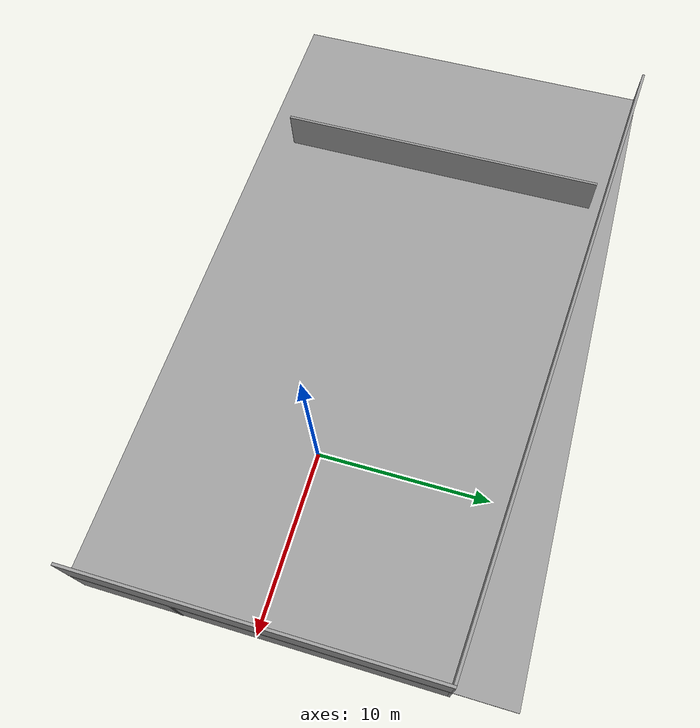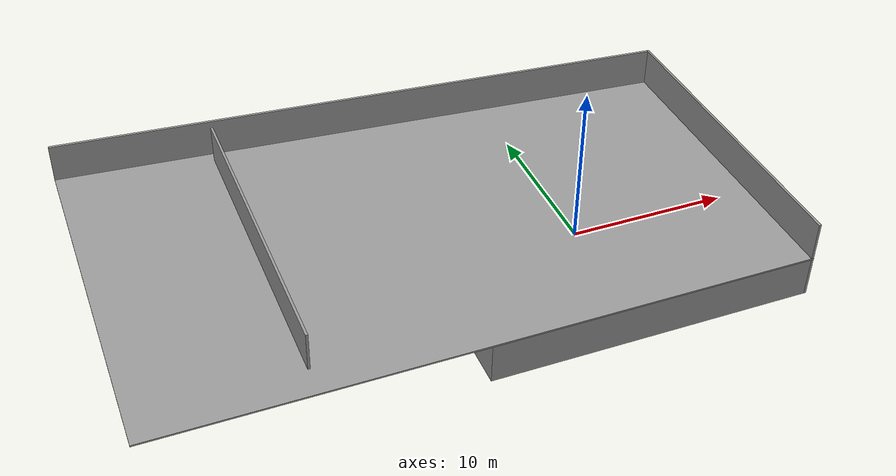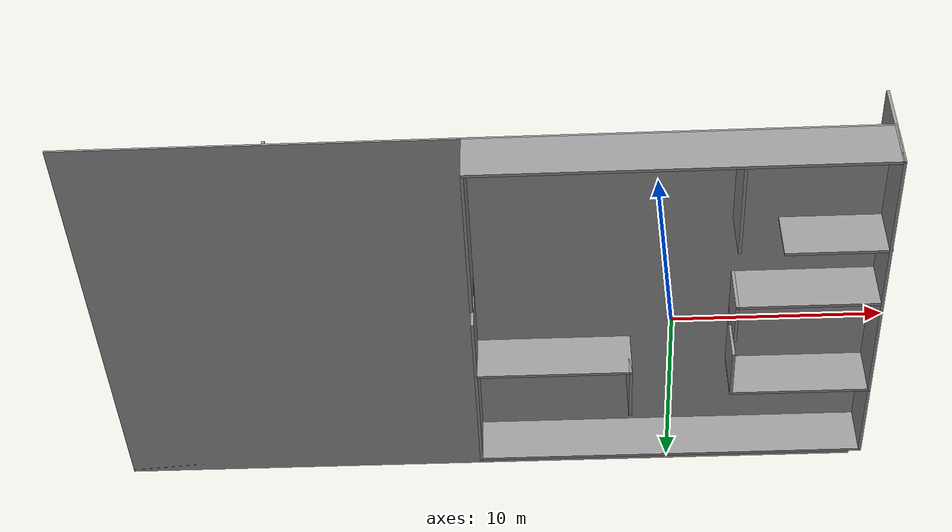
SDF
<?xml version='1.0'?>
<sdf version='1.7'>
  <model name='room_test'>
    <pose>0.223833 0.312062 0 0 -0 0</pose>
    <link name='Floor_0'>
      <collision name='Floor_0_Collision'>
        <geometry>
          <box>
            <size>38.858 22.939 0.1</size>
          </box>
        </geometry>
        <pose>0 0 0.05 0 -0 0</pose>
      </collision>
      <visual name='Floor_0_Visual'>
        <pose>0 0 0.05 0 -0 0</pose>
        <geometry>
          <box>
            <size>38.858 22.939 0.1</size>
          </box>
        </geometry>
        <material>
          <script>
            <uri>file://media/materials/scripts/gazebo.material</uri>
            <name>Gazebo/Grey</name>
          </script>
          <ambient>1 1 1 1</ambient>
        </material>
        <meta>
          <layer>1</layer>
        </meta>
      </visual>
      <pose>-9.55808 1.59449 2.5 0 -0 0</pose>
    </link>
    <link name='Wall_12'>
      <collision name='Wall_12_Collision'>
        <geometry>
          <box>
            <size>19.75 0.15 2.5</size>
          </box>
        </geometry>
        <pose>0 0 1.25 0 -0 0</pose>
      </collision>
      <visual name='Wall_12_Visual'>
        <pose>0 0 1.25 0 -0 0</pose>
        <geometry>
          <box>
            <size>19.75 0.15 2.5</size>
          </box>
        </geometry>
        <material>
          <script>
            <uri>file://media/materials/scripts/gazebo.material</uri>
            <name>Gazebo/Grey</name>
          </script>
          <ambient>1 1 1 1</ambient>
        </material>
        <meta>
          <layer>1</layer>
        </meta>
      </visual>
      <pose>9.79004 -0 2.5 0 -0 1.5708</pose>
    </link>
    <link name='Wall_13'>
      <collision name='Wall_13_Collision'>
        <geometry>
          <box>
            <size>38.9769 0.15 2.5</size>
          </box>
        </geometry>
        <pose>0 0 1.25 0 -0 0</pose>
      </collision>
      <visual name='Wall_13_Visual'>
        <pose>0 0 1.25 0 -0 0</pose>
        <geometry>
          <box>
            <size>38.9769 0.15 2.5</size>
          </box>
        </geometry>
        <material>
          <script>
            <uri>file://media/materials/scripts/gazebo.material</uri>
            <name>Gazebo/Grey</name>
          </script>
          <ambient>1 1 1 1</ambient>
        </material>
        <meta>
          <layer>1</layer>
        </meta>
      </visual>
      <pose>-9.55808 11.3915 2.5 0 -0 3.05952</pose>
    </link>
    <link name='Wall_14'>
      <collision name='Wall_14_Collision'>
        <geometry>
          <box>
            <size>19.5 0.15 2.5</size>
          </box>
        </geometry>
        <pose>0 0 1.25 0 -0 0</pose>
      </collision>
      <visual name='Wall_14_Visual'>
        <pose>0 0 1.25 0 -0 0</pose>
        <geometry>
          <box>
            <size>19.5 0.15 2.5</size>
          </box>
        </geometry>
        <material>
          <script>
            <uri>file://media/materials/scripts/gazebo.material</uri>
            <name>Gazebo/Grey</name>
          </script>
          <ambient>1 1 1 1</ambient>
        </material>
        <meta>
          <layer>1</layer>
        </meta>
      </visual>
      <pose>-19.3581 1.71655 2.5 0 -0 -1.5708</pose>
    </link>
    <link name='Wall_15'>
      <pose>-9.80996 -0 0 0 -0 -1.5708</pose>
      <visual name='Wall_15_Visual_0'>
        <pose>-4.81245 0 1.25 0 -0 0</pose>
        <geometry>
          <box>
            <size>10.1251 0.15 2.5</size>
          </box>
        </geometry>
        <material>
          <script>
            <uri>file://media/materials/scripts/gazebo.material</uri>
            <name>Gazebo/Grey</name>
          </script>
          <ambient>1 1 1 1</ambient>
        </material>
        <meta>
          <layer>0</layer>
        </meta>
      </visual>
      <collision name='Wall_15_Collision_0'>
        <geometry>
          <box>
            <size>10.1251 0.15 2.5</size>
          </box>
        </geometry>
        <pose>-4.81245 0 1.25 0 -0 0</pose>
      </collision>
      <visual name='Wall_15_Visual_1'>
        <pose>5.51255 0 1.25 0 -0 0</pose>
        <geometry>
          <box>
            <size>8.72489 0.15 2.5</size>
          </box>
        </geometry>
        <material>
          <script>
            <uri>file://media/materials/scripts/gazebo.material</uri>
            <name>Gazebo/Grey</name>
          </script>
          <ambient>1 1 1 1</ambient>
        </material>
        <meta>
          <layer>0</layer>
        </meta>
      </visual>
      <collision name='Wall_15_Collision_1'>
        <geometry>
          <box>
            <size>8.72489 0.15 2.5</size>
          </box>
        </geometry>
        <pose>5.51255 0 1.25 0 -0 0</pose>
      </collision>
      <visual name='Wall_15_Visual_2'>
        <pose>0.700107 0 2.25 0 -0 0</pose>
        <geometry>
          <box>
            <size>0.9 0.15 0.5</size>
          </box>
        </geometry>
        <material>
          <script>
            <uri>file://media/materials/scripts/gazebo.material</uri>
            <name>Gazebo/Grey</name>
          </script>
          <ambient>1 1 1 1</ambient>
        </material>
        <meta>
          <layer>0</layer>
        </meta>
      </visual>
      <collision name='Wall_15_Collision_2'>
        <geometry>
          <box>
            <size>0.9 0.15 0.5</size>
          </box>
        </geometry>
        <pose>0.700107 0 2.25 0 -0 0</pose>
      </collision>
    </link>
    <link name='Wall_16'>
      <collision name='Wall_16_Collision'>
        <geometry>
          <box>
            <size>19.75 0.15 2.5</size>
          </box>
        </geometry>
        <pose>0 0 1.25 0 -0 0</pose>
      </collision>
      <visual name='Wall_16_Visual'>
        <pose>0 0 1.25 0 -0 0</pose>
        <geometry>
          <box>
            <size>19.75 0.15 2.5</size>
          </box>
        </geometry>
        <material>
          <script>
            <uri>file://media/materials/scripts/gazebo.material</uri>
            <name>Gazebo/Grey</name>
          </script>
          <ambient>1 1 1 1</ambient>
        </material>
        <meta>
          <layer>0</layer>
        </meta>
      </visual>
      <pose>-0.009963 -9.8 0 0 -0 0</pose>
    </link>
    <link name='Wall_18'>
      <collision name='Wall_18_Collision'>
        <geometry>
          <box>
            <size>7.75 0.15 2.5</size>
          </box>
        </geometry>
        <pose>0 0 1.25 0 -0 0</pose>
      </collision>
      <visual name='Wall_18_Visual'>
        <pose>0 0 1.25 0 -0 0</pose>
        <geometry>
          <box>
            <size>7.75 0.15 2.5</size>
          </box>
        </geometry>
        <material>
          <script>
            <uri>file://media/materials/scripts/gazebo.material</uri>
            <name>Gazebo/Grey</name>
          </script>
          <ambient>1 1 1 1</ambient>
        </material>
        <meta>
          <layer>0</layer>
        </meta>
      </visual>
      <pose>-5.91845 3.47309 0 0 -0 0</pose>
    </link>
    <link name='Wall_19'>
      <collision name='Wall_19_Collision'>
        <geometry>
          <box>
            <size>3.25 0.15 2.5</size>
          </box>
        </geometry>
        <pose>0 0 1.25 0 -0 0</pose>
      </collision>
      <visual name='Wall_19_Visual'>
        <pose>0 0 1.25 0 -0 0</pose>
        <geometry>
          <box>
            <size>3.25 0.15 2.5</size>
          </box>
        </geometry>
        <material>
          <script>
            <uri>file://media/materials/scripts/gazebo.material</uri>
            <name>Gazebo/Grey</name>
          </script>
          <ambient>1 1 1 1</ambient>
        </material>
        <meta>
          <layer>0</layer>
        </meta>
      </visual>
      <pose>-2.11845 5.02309 0 0 -0 1.5708</pose>
    </link>
    <link name='Wall_21'>
      <collision name='Wall_21_Collision'>
        <geometry>
          <box>
            <size>7 0.15 2.5</size>
          </box>
        </geometry>
        <pose>0 0 1.25 0 -0 0</pose>
      </collision>
      <visual name='Wall_21_Visual'>
        <pose>0 0 1.25 0 -0 0</pose>
        <geometry>
          <box>
            <size>7 0.15 2.5</size>
          </box>
        </geometry>
        <material>
          <script>
            <uri>file://media/materials/scripts/gazebo.material</uri>
            <name>Gazebo/Grey</name>
          </script>
          <ambient>1 1 1 1</ambient>
        </material>
        <meta>
          <layer>0</layer>
        </meta>
      </visual>
      <pose>6.33146 5.18517 0 0 -0 3.14159</pose>
    </link>
    <link name='Wall_22'>
      <pose>2.90646 2.13517 0 0 -0 -1.5708</pose>
      <visual name='Wall_22_Visual_0'>
        <pose>-1.65392 0 1.25 0 -0 0</pose>
        <geometry>
          <box>
            <size>2.94216 0.15 2.5</size>
          </box>
        </geometry>
        <material>
          <script>
            <uri>file://media/materials/scripts/gazebo.material</uri>
            <name>Gazebo/Grey</name>
          </script>
          <ambient>1 1 1 1</ambient>
        </material>
        <meta>
          <layer>0</layer>
        </meta>
      </visual>
      <collision name='Wall_22_Collision_0'>
        <geometry>
          <box>
            <size>2.94216 0.15 2.5</size>
          </box>
        </geometry>
        <pose>-1.65392 0 1.25 0 -0 0</pose>
      </collision>
      <visual name='Wall_22_Visual_1'>
        <pose>1.92108 0 1.25 0 -0 0</pose>
        <geometry>
          <box>
            <size>2.40785 0.15 2.5</size>
          </box>
        </geometry>
        <material>
          <script>
            <uri>file://media/materials/scripts/gazebo.material</uri>
            <name>Gazebo/Grey</name>
          </script>
          <ambient>1 1 1 1</ambient>
        </material>
        <meta>
          <layer>0</layer>
        </meta>
      </visual>
      <collision name='Wall_22_Collision_1'>
        <geometry>
          <box>
            <size>2.40785 0.15 2.5</size>
          </box>
        </geometry>
        <pose>1.92108 0 1.25 0 -0 0</pose>
      </collision>
      <visual name='Wall_22_Visual_2'>
        <pose>0.267155 0 2.25 0 -0 0</pose>
        <geometry>
          <box>
            <size>0.9 0.15 0.5</size>
          </box>
        </geometry>
        <material>
          <script>
            <uri>file://media/materials/scripts/gazebo.material</uri>
            <name>Gazebo/Grey</name>
          </script>
          <ambient>1 1 1 1</ambient>
        </material>
        <meta>
          <layer>0</layer>
        </meta>
      </visual>
      <collision name='Wall_22_Collision_2'>
        <geometry>
          <box>
            <size>0.9 0.15 0.5</size>
          </box>
        </geometry>
        <pose>0.267155 0 2.25 0 -0 0</pose>
      </collision>
    </link>
    <link name='Wall_23'>
      <collision name='Wall_23_Collision'>
        <geometry>
          <box>
            <size>7 0.15 2.5</size>
          </box>
        </geometry>
        <pose>0 0 1.25 0 -0 0</pose>
      </collision>
      <visual name='Wall_23_Visual'>
        <pose>0 0 1.25 0 -0 0</pose>
        <geometry>
          <box>
            <size>7 0.15 2.5</size>
          </box>
        </geometry>
        <material>
          <script>
            <uri>file://media/materials/scripts/gazebo.material</uri>
            <name>Gazebo/Grey</name>
          </script>
          <ambient>1 1 1 1</ambient>
        </material>
        <meta>
          <layer>0</layer>
        </meta>
      </visual>
      <pose>6.33146 -0.914833 0 0 -0 0</pose>
    </link>
    <link name='Wall_25'>
      <collision name='Wall_25_Collision'>
        <geometry>
          <box>
            <size>5.25 0.15 2.5</size>
          </box>
        </geometry>
        <pose>0 0 1.25 0 -0 0</pose>
      </collision>
      <visual name='Wall_25_Visual'>
        <pose>0 0 1.25 0 -0 0</pose>
        <geometry>
          <box>
            <size>5.25 0.15 2.5</size>
          </box>
        </geometry>
        <material>
          <script>
            <uri>file://media/materials/scripts/gazebo.material</uri>
            <name>Gazebo/Grey</name>
          </script>
          <ambient>1 1 1 1</ambient>
        </material>
        <meta>
          <layer>0</layer>
        </meta>
      </visual>
      <pose>2.80114 -7.13853 0 0 -0 1.5708</pose>
    </link>
    <link name='Wall_27'>
      <collision name='Wall_27_Collision'>
        <geometry>
          <box>
            <size>5 0.15 2.5</size>
          </box>
        </geometry>
        <pose>0 0 1.25 0 -0 0</pose>
      </collision>
      <visual name='Wall_27_Visual'>
        <pose>0 0 1.25 0 -0 0</pose>
        <geometry>
          <box>
            <size>5 0.15 2.5</size>
          </box>
        </geometry>
        <material>
          <script>
            <uri>file://media/materials/scripts/gazebo.material</uri>
            <name>Gazebo/Grey</name>
          </script>
          <ambient>1 1 1 1</ambient>
        </material>
        <meta>
          <layer>0</layer>
        </meta>
      </visual>
      <pose>7.38497 -4.39178 0 0 -0 3.14159</pose>
    </link>
    <link name='Wall_8'>
      <collision name='Wall_8_Collision'>
        <geometry>
          <box>
            <size>19.75 0.15 2.5</size>
          </box>
        </geometry>
        <pose>0 0 1.25 0 -0 0</pose>
      </collision>
      <visual name='Wall_8_Visual'>
        <pose>0 0 1.25 0 -0 0</pose>
        <geometry>
          <box>
            <size>19.75 0.15 2.5</size>
          </box>
        </geometry>
        <material>
          <script>
            <uri>file://media/materials/scripts/gazebo.material</uri>
            <name>Gazebo/Grey</name>
          </script>
          <ambient>1 1 1 1</ambient>
        </material>
        <meta>
          <layer>0</layer>
        </meta>
      </visual>
      <pose>9.79004 -0 0 0 -0 1.5708</pose>
    </link>
    <link name='Wall_9'>
      <collision name='Wall_9_Collision'>
        <geometry>
          <box>
            <size>19.75 0.15 2.5</size>
          </box>
        </geometry>
        <pose>0 0 1.25 0 -0 0</pose>
      </collision>
      <visual name='Wall_9_Visual'>
        <pose>0 0 1.25 0 -0 0</pose>
        <geometry>
          <box>
            <size>19.75 0.15 2.5</size>
          </box>
        </geometry>
        <material>
          <script>
            <uri>file://media/materials/scripts/gazebo.material</uri>
            <name>Gazebo/Grey</name>
          </script>
          <ambient>1 1 1 1</ambient>
        </material>
        <meta>
          <layer>0</layer>
        </meta>
      </visual>
      <pose>-0.009963 9.8 0 0 -0 3.14159</pose>
    </link>
    <static>1</static>
  </model>
</sdf>
